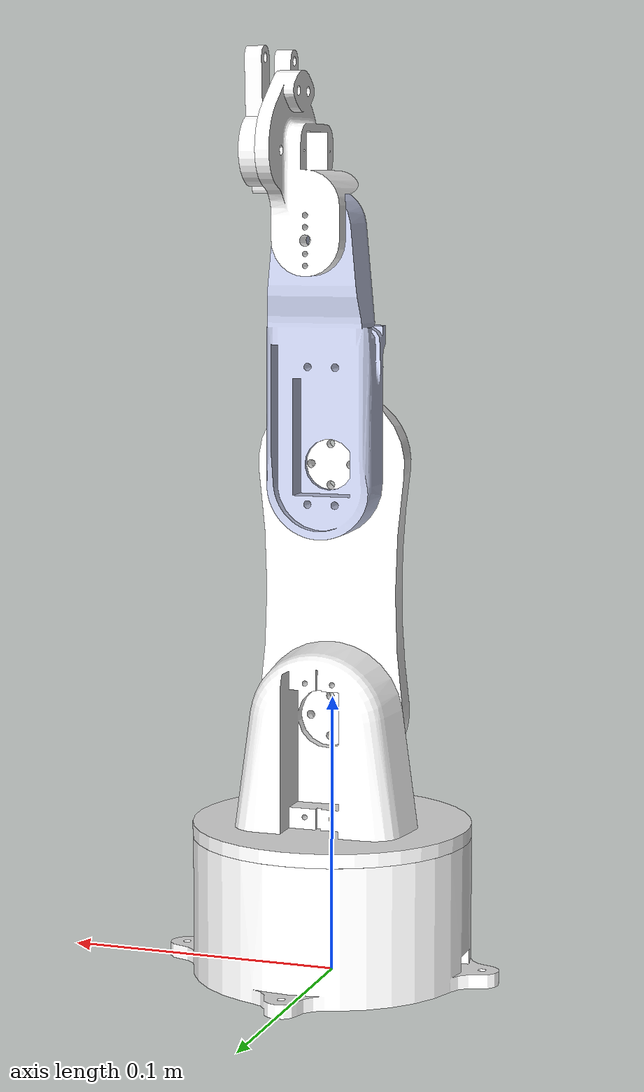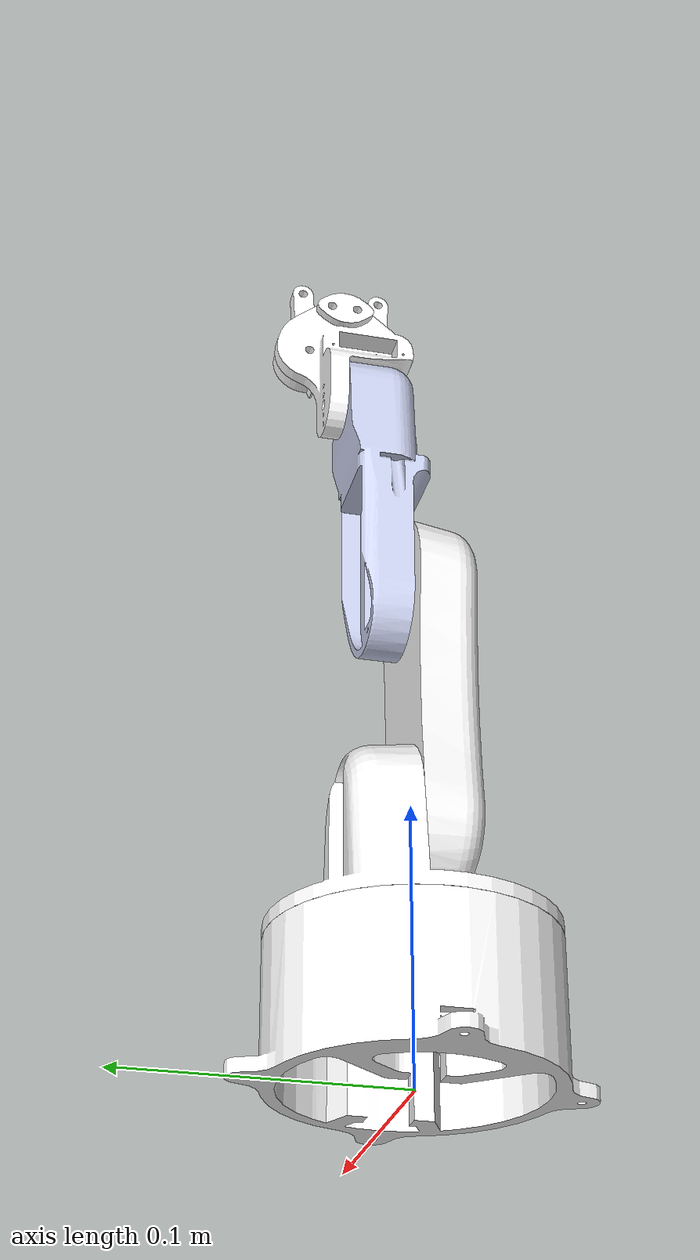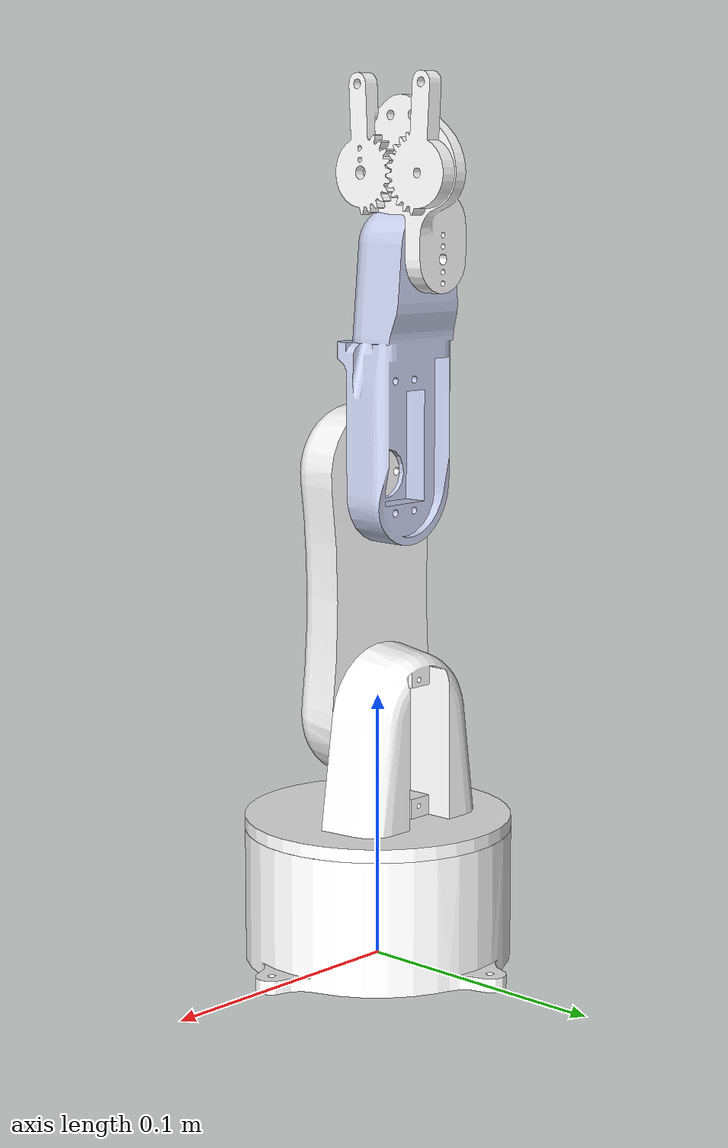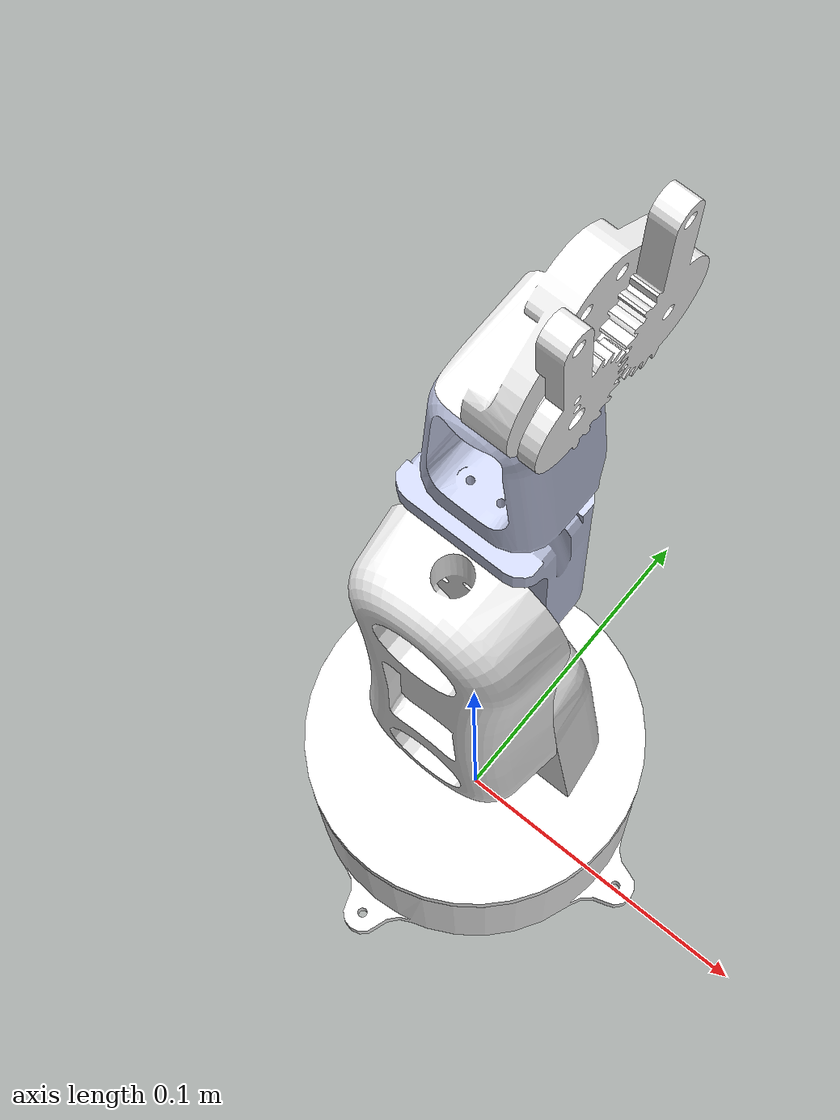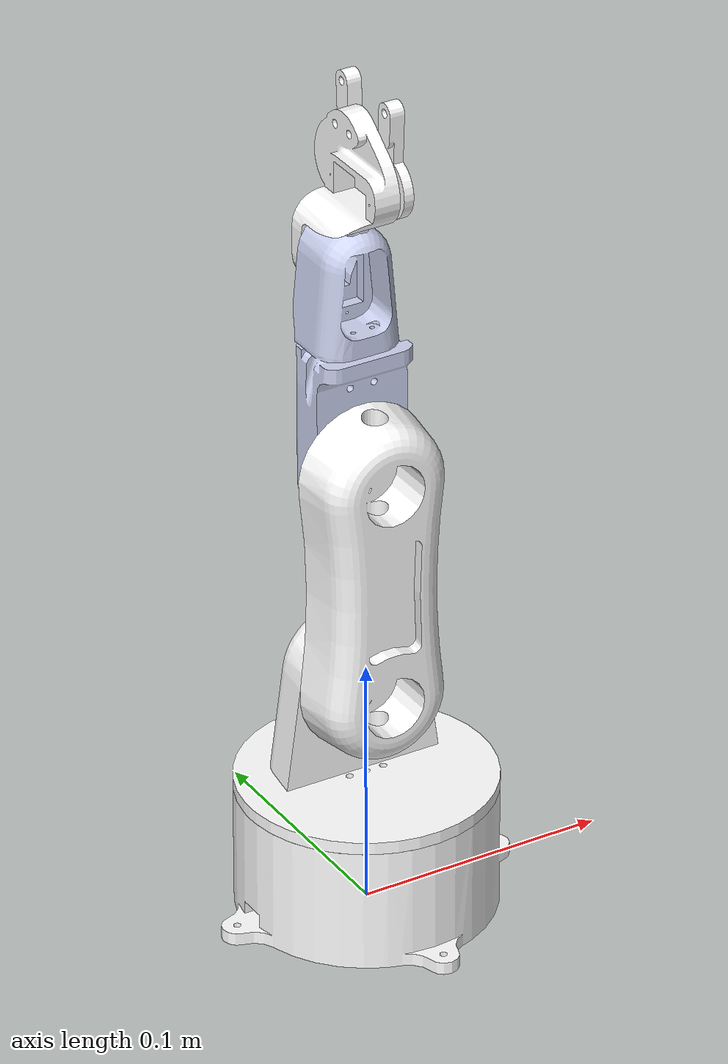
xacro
<?xml version="1.0"?>
<robot xmlns:xacro="http://www.ros.org/wiki/xacro" name="my_arm">
    <xacro:arg name="initial_positions_file" default="initial_positions.yaml" />

    <!-- Import my_arm urdf file -->
    <xacro:include filename="$(find robot_arm_v2)/urdf/robot_arm_v2.urdf.xacro" />

    <!-- Import control_xacro -->
    <xacro:include filename="my_arm.ros2_control.xacro" />

    <xacro:my_arm_ros2_control name="FakeSystem" initial_positions_file="$(arg initial_positions_file)"/>

</robot>

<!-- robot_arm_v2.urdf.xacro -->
<robot name="my_arm" xmlns:xacro="http://www.ros.org/wiki/xacro">

    <xacro:include filename="robot_arm_v2.urdf" />
    <xacro:include filename="robot_arm_v2.ros2_control.xacro" />

</robot>

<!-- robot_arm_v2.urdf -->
<robot xmlns:xacro="http://www.ros.org/wiki/xacro">
  <link
    name="base_link">
    <inertial>
      <origin
        xyz="0.00088931 1.518E-10 0.022426"
        rpy="0 0 0" />
      <mass
        value="0.093992" />
      <inertia
        ixx="0.00011412"
        ixy="1.977E-13"
        ixz="-1.3528E-06"
        iyy="0.00012443"
        iyz="1.9115E-13"
        izz="0.00019777" />
    </inertial>
    <visual>
      <origin
        xyz="0 0 0"
        rpy="0 0 0" />
      <geometry>
        <mesh
          filename="package://robot_arm_v2/meshes/base_link.STL" />
      </geometry>
      <material
        name="">
        <color
          rgba="1 1 1 1" />
      </material>
    </visual>
    <collision>
      <origin
        xyz="0 0 0"
        rpy="0 0 0" />
      <geometry>
        <mesh
          filename="package://robot_arm_v2/meshes/base_link.STL" />
      </geometry>
    </collision>
  </link>
  <link
    name="rotating_waste_link">
    <inertial>
      <origin
        xyz="-1.0381E-07 0.0059328 0.019795"
        rpy="0 0 0" />
      <mass
        value="0.091516" />
      <inertia
        ixx="6.8276E-05"
        ixy="2.7832E-10"
        ixz="8.4031E-11"
        iyy="7.9726E-05"
        iyz="-7.69E-06"
        izz="7.1201E-05" />
    </inertial>
    <visual>
      <origin
        xyz="0 0 0"
        rpy="0 0 0" />
      <geometry>
        <mesh
          filename="package://robot_arm_v2/meshes/rotating_waste_link.STL" />
      </geometry>
      <material
        name="">
        <color
          rgba="1 1 1 1" />
      </material>
    </visual>
    <collision>
      <origin
        xyz="0 0 0"
        rpy="0 0 0" />
      <geometry>
        <mesh
          filename="package://robot_arm_v2/meshes/rotating_waste_link.STL" />
      </geometry>
    </collision>
  </link>
  <joint
    name="base_rotating_waste_joint"
    type="revolute">
    <origin
      xyz="0 0 0.05"
      rpy="-0.057342 0 0" />
    <parent
      link="base_link" />
    <child
      link="rotating_waste_link" />
    <axis
      xyz="0 -0.057311 0.99836" />
    <limit
      lower="-1.57"
      upper="1.57"
      effort="300"
      velocity="2" />
  </joint>
  <link
    name="arm1_link">
    <inertial>
      <origin
        xyz="3.5455E-08 -0.012865 0.044336"
        rpy="0 0 0" />
      <mass
        value="0.11203" />
      <inertia
        ixx="0.00016765"
        ixy="-1.7353E-11"
        ixz="4.4303E-11"
        iyy="0.00018597"
        iyz="9.0288E-06"
        izz="2.9208E-05" />
    </inertial>
    <visual>
      <origin
        xyz="0 0 0"
        rpy="0 0 0" />
      <geometry>
        <mesh
          filename="package://robot_arm_v2/meshes/arm1_link.STL" />
      </geometry>
      <material
        name="">
        <color
          rgba="1 1 1 1" />
      </material>
    </visual>
    <collision>
      <origin
        xyz="0 0 0"
        rpy="0 0 0" />
      <geometry>
        <mesh
          filename="package://robot_arm_v2/meshes/arm1_link.STL" />
      </geometry>
    </collision>
  </link>
  <joint
    name="rotating_waste_arm1_joint"
    type="revolute">
    <origin
      xyz="0 0 0.043622"
      rpy="0 0 0" />
    <parent
      link="rotating_waste_link" />
    <child
      link="arm1_link" />
    <axis
      xyz="0 0.99836 0.057311" />
    <limit
      lower="-1.57"
      upper="1.57"
      effort="300"
      velocity="2" />
  </joint>
  <link
    name="arm2_link">
    <inertial>
      <origin
        xyz="-4.60037712575741E-05 0.00826415334333552 0.0405945014449565"
        rpy="0 0 0" />
      <mass
        value="0.0464167187510375" />
      <inertia
        ixx="4.92280477152446E-05"
        ixy="4.21050658614469E-09"
        ixz="5.3490315951923E-08"
        iyy="5.29975941677275E-05"
        iyz="-3.31095369900386E-06"
        izz="7.79953316722325E-06" />
    </inertial>
    <visual>
      <origin
        xyz="0 0 0"
        rpy="0 0 0" />
      <geometry>
        <mesh
          filename="package://robot_arm_v2/meshes/arm2_link.STL" />
      </geometry>
      <material
        name="">
        <color
          rgba="0.792156862745098 0.819607843137255 0.933333333333333 1" />
      </material>
    </visual>
    <collision>
      <origin
        xyz="0 0 0"
        rpy="0 0 0" />
      <geometry>
        <mesh
          filename="package://robot_arm_v2/meshes/arm2_link.STL" />
      </geometry>
    </collision>
  </link>
  <joint
    name="arm1_arm2_joint"
    type="revolute">
    <origin
      xyz="0 -0.005158 0.089852"
      rpy="0.057342 0 0" />
    <parent
      link="arm1_link" />
    <child
      link="arm2_link" />
    <axis
      xyz="0 -1 0" />
    <limit
      lower="-0.972"
      upper="2.172"
      effort="300"
      velocity="2" />
  </joint>
  <link
    name="gripper_base_link">
    <inertial>
      <origin
        xyz="0.00479249239819878 -0.00160453360122901 0.0244850803418461"
        rpy="0 0 0" />
      <mass
        value="0.0158876288459029" />
      <inertia
        ixx="6.37287254002426E-06"
        ixy="1.02161652456056E-08"
        ixz="-8.47468223571324E-07"
        iyy="4.97630585300611E-06"
        iyz="5.57046624597371E-07"
        izz="2.63590863065603E-06" />
    </inertial>
    <visual>
      <origin
        xyz="0 0 0"
        rpy="0 0 0" />
      <geometry>
        <mesh
          filename="package://robot_arm_v2/meshes/gripper_base_link.STL" />
      </geometry>
      <material
        name="">
        <color
          rgba="1 1 1 1" />
      </material>
    </visual>
    <collision>
      <origin
        xyz="0 0 0"
        rpy="0 0 0" />
      <geometry>
        <mesh
          filename="package://robot_arm_v2/meshes/gripper_base_link.STL" />
      </geometry>
    </collision>
  </link>
  <joint
    name="arm2_gripper_base_joint"
    type="revolute">
    <origin
      xyz="-8.582E-05 0.022 0.07865"
      rpy="0 0 0" />
    <parent
      link="arm2_link" />
    <child
      link="gripper_base_link" />
    <axis
      xyz="0 -1 0" />
    <limit
      lower="-1.57"
      upper="1.57"
      effort="300"
      velocity="2" />
  </joint>
  <link
    name="gripper_left_link">
    <inertial>
      <origin
        xyz="0.0037437 0.00019144 0.0072728"
        rpy="0 0 0" />
      <mass
        value="0.002881" />
      <inertia
        ixx="5.5224E-07"
        ixy="-1.063E-09"
        ixz="1.3325E-08"
        iyy="4.6635E-07"
        iyz="3.0497E-08"
        izz="9.7137E-08" />
    </inertial>
    <visual>
      <origin
        xyz="0 0 0"
        rpy="0 0 0" />
      <geometry>
        <mesh
          filename="package://robot_arm_v2/meshes/gripper_left_link.STL" />
      </geometry>
      <material
        name="">
        <color
          rgba="1 1 1 1" />
      </material>
    </visual>
    <collision>
      <origin
        xyz="0 0 0"
        rpy="0 0 0" />
      <geometry>
        <mesh
          filename="package://robot_arm_v2/meshes/gripper_left_link.STL" />
      </geometry>
    </collision>
  </link>
  <joint
    name="gripper_base_left_joint"
    type="revolute">
    <origin
      xyz="0.012135 -0.01595 0.0302"
      rpy="0 0 0" />
    <parent
      link="gripper_base_link" />
    <child
      link="gripper_left_link" />
    <axis
      xyz="-1 0 0" />
    <limit
      lower="-1.18"
      upper="0"
      effort="300"
      velocity="2" />
  </joint>
  <link
    name="gripper_right_link">
    <inertial>
      <origin
        xyz="0.003 -0.00028643 0.0056038"
        rpy="0 0 0" />
      <mass
        value="0.0040417" />
      <inertia
        ixx="6.8428E-07"
        ixy="5.5718E-23"
        ixz="-2.528E-22"
        iyy="5.6109E-07"
        iyz="-3.7692E-08"
        izz="1.4744E-07" />
    </inertial>
    <visual>
      <origin
        xyz="0 0 0"
        rpy="0 0 0" />
      <geometry>
        <mesh
          filename="package://robot_arm_v2/meshes/gripper_right_link.STL" />
      </geometry>
      <material
        name="">
        <color
          rgba="1 1 1 1" />
      </material>
    </visual>
    <collision>
      <origin
        xyz="0 0 0"
        rpy="0 0 0" />
      <geometry>
        <mesh
          filename="package://robot_arm_v2/meshes/gripper_right_link.STL" />
      </geometry>
    </collision>
  </link>
  <joint
    name="gripper_base_right_joint"
    type="revolute">
    <origin
      xyz="0.012135 0.01095 0.0302"
      rpy="0 0 0" />
    <parent
      link="gripper_base_link" />
    <child
      link="gripper_right_link" />
    <axis
      xyz="1 0 0" />
    <limit
      lower="-1.57"
      upper="1.57"
      effort="300"
      velocity="2" />
    <mimic
      joint="gripper_base_left_joint"
      multiplier="1"
      offset="0" />
  </joint>
</robot>
